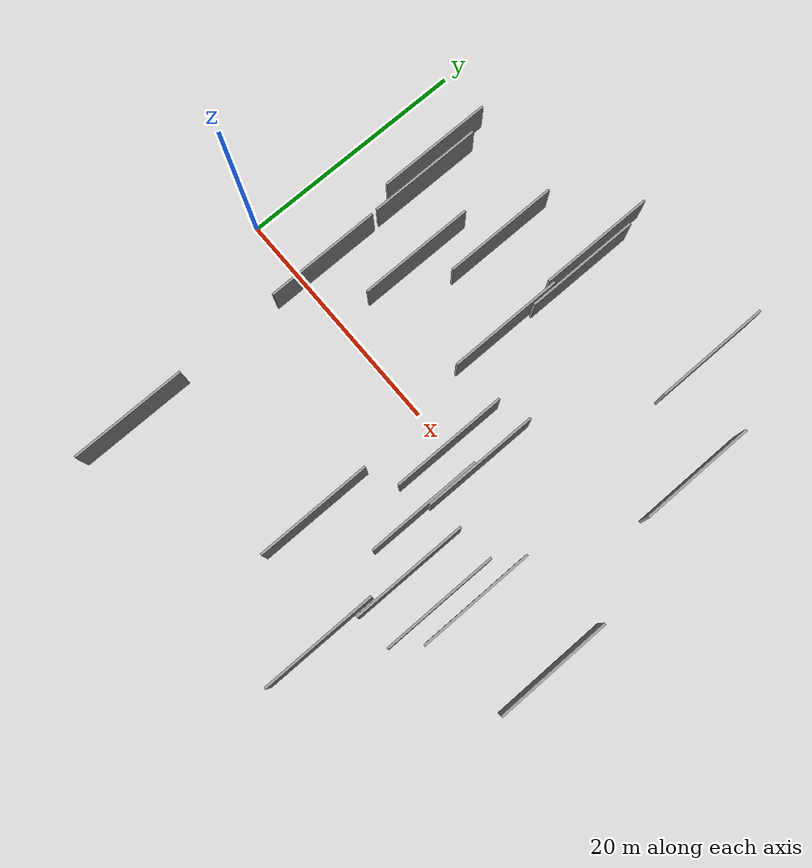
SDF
<sdf version="1.6">
 <world name="default">
  <scene>
   <sky><clouds><speed>12</speed></clouds></sky>
   <ambient>0.4 0.4 0.4 1</ambient>
   <background>0.7 0.7 0.7 1</background>
   <shadows>1</shadows>
  </scene>
  <gravity>0 0 -9.8066</gravity>
  <magnetic_field>6e-06 2.3e-05 -4.2e-05</magnetic_field>
  <physics default="0" name="default_physics" type="ode">
   <ode>
    <solver>
     <type>quick</type>
     <iters>10</iters>
     <sor>1.0</sor>
     <use_dynamic_moi_rescaling>0</use_dynamic_moi_rescaling>
    </solver>
    <constraints>
     <cfm>0</cfm>
     <erp>0.2</erp>
     <contact_max_correcting_vel>100</contact_max_correcting_vel>
     <contact_surface_layer>0.001</contact_surface_layer>
    </constraints>
   </ode>
   <max_step_size>0.004</max_step_size>
   <real_time_factor>1</real_time_factor>
   <real_time_update_rate>250</real_time_update_rate>
  </physics>
  <light name="sun" type="directional">
   <pose>0 0 10 0 0 0</pose>
   <diffuse>0.8 0.8 0.8 1</diffuse>
   <specular>0.2 0.2 0.2 1</specular>
   <attenuation>
    <range>1000</range>
    <constant>0.9</constant>
    <linear>0.01</linear>
    <quadratic>0.001</quadratic>
   </attenuation>
   <direction>-0.5 0.1 -0.9</direction>
  </light>
  <model name="grey_wall_1">
   <static>1</static>
   <pose>5.0170 14.5198 0.0 0.000000 0.000000 1.570796</pose>
   <link name="link">
    <pose>0 0 2.00 0 0 0</pose>
    <collision name="collision"><geometry><box><size>10.00 0.2 4.00</size></box></geometry></collision>
    <visual name="visual">
     <cast_shadows>0</cast_shadows>
     <geometry><box><size>10.00 0.2 4.00</size></box></geometry>
     <material>
      <script>
       <uri>model://grey_wall/materials/scripts</uri>
       <uri>model://grey_wall/materials/textures</uri>
       <name>vrc/grey_wall</name>
      </script>
     </material>
    </visual>
   </link>
  </model>
  <model name="grey_wall_2">
   <static>1</static>
   <pose>28.4759 -16.8140 0.0 0.000000 0.000000 1.570796</pose>
   <link name="link">
    <pose>0 0 2.00 0 0 0</pose>
    <collision name="collision"><geometry><box><size>10.00 0.2 4.00</size></box></geometry></collision>
    <visual name="visual">
     <cast_shadows>0</cast_shadows>
     <geometry><box><size>10.00 0.2 4.00</size></box></geometry>
     <material>
      <script>
       <uri>model://grey_wall/materials/scripts</uri>
       <uri>model://grey_wall/materials/textures</uri>
       <name>vrc/grey_wall</name>
      </script>
     </material>
    </visual>
   </link>
  </model>
  <model name="grey_wall_3">
   <static>1</static>
   <pose>13.6258 13.8792 0.0 0.000000 0.000000 1.570796</pose>
   <link name="link">
    <pose>0 0 2.00 0 0 0</pose>
    <collision name="collision"><geometry><box><size>10.00 0.2 4.00</size></box></geometry></collision>
    <visual name="visual">
     <cast_shadows>0</cast_shadows>
     <geometry><box><size>10.00 0.2 4.00</size></box></geometry>
     <material>
      <script>
       <uri>model://grey_wall/materials/scripts</uri>
       <uri>model://grey_wall/materials/textures</uri>
       <name>vrc/grey_wall</name>
      </script>
     </material>
    </visual>
   </link>
  </model>
  <model name="grey_wall_4">
   <static>1</static>
   <pose>6.1085 12.5830 0.0 0.000000 0.000000 1.570796</pose>
   <link name="link">
    <pose>0 0 2.00 0 0 0</pose>
    <collision name="collision"><geometry><box><size>10.00 0.2 4.00</size></box></geometry></collision>
    <visual name="visual">
     <cast_shadows>0</cast_shadows>
     <geometry><box><size>10.00 0.2 4.00</size></box></geometry>
     <material>
      <script>
       <uri>model://grey_wall/materials/scripts</uri>
       <uri>model://grey_wall/materials/textures</uri>
       <name>vrc/grey_wall</name>
      </script>
     </material>
    </visual>
   </link>
  </model>
  <model name="grey_wall_5">
   <static>1</static>
   <pose>41.0255 -5.1902 0.0 0.000000 0.000000 1.570796</pose>
   <link name="link">
    <pose>0 0 2.00 0 0 0</pose>
    <collision name="collision"><geometry><box><size>10.00 0.2 4.00</size></box></geometry></collision>
    <visual name="visual">
     <cast_shadows>0</cast_shadows>
     <geometry><box><size>10.00 0.2 4.00</size></box></geometry>
     <material>
      <script>
       <uri>model://grey_wall/materials/scripts</uri>
       <uri>model://grey_wall/materials/textures</uri>
       <name>vrc/grey_wall</name>
      </script>
     </material>
    </visual>
   </link>
  </model>
  <model name="grey_wall_6">
   <static>1</static>
   <pose>37.4148 12.4270 0.0 0.000000 0.000000 1.570796</pose>
   <link name="link">
    <pose>0 0 2.00 0 0 0</pose>
    <collision name="collision"><geometry><box><size>10.00 0.2 4.00</size></box></geometry></collision>
    <visual name="visual">
     <cast_shadows>0</cast_shadows>
     <geometry><box><size>10.00 0.2 4.00</size></box></geometry>
     <material>
      <script>
       <uri>model://grey_wall/materials/scripts</uri>
       <uri>model://grey_wall/materials/textures</uri>
       <name>vrc/grey_wall</name>
      </script>
     </material>
    </visual>
   </link>
  </model>
  <model name="grey_wall_7">
   <static>1</static>
   <pose>10.6777 7.7717 0.0 0.000000 0.000000 1.570796</pose>
   <link name="link">
    <pose>0 0 2.00 0 0 0</pose>
    <collision name="collision"><geometry><box><size>10.00 0.2 4.00</size></box></geometry></collision>
    <visual name="visual">
     <cast_shadows>0</cast_shadows>
     <geometry><box><size>10.00 0.2 4.00</size></box></geometry>
     <material>
      <script>
       <uri>model://grey_wall/materials/scripts</uri>
       <uri>model://grey_wall/materials/textures</uri>
       <name>vrc/grey_wall</name>
      </script>
     </material>
    </visual>
   </link>
  </model>
  <model name="grey_wall_8">
   <static>1</static>
   <pose>31.4220 19.6025 0.0 0.000000 0.000000 1.570796</pose>
   <link name="link">
    <pose>0 0 2.00 0 0 0</pose>
    <collision name="collision"><geometry><box><size>10.00 0.2 4.00</size></box></geometry></collision>
    <visual name="visual">
     <cast_shadows>0</cast_shadows>
     <geometry><box><size>10.00 0.2 4.00</size></box></geometry>
     <material>
      <script>
       <uri>model://grey_wall/materials/scripts</uri>
       <uri>model://grey_wall/materials/textures</uri>
       <name>vrc/grey_wall</name>
      </script>
     </material>
    </visual>
   </link>
  </model>
  <model name="grey_wall_9">
   <static>1</static>
   <pose>19.4911 9.2202 0.0 0.000000 0.000000 1.570796</pose>
   <link name="link">
    <pose>0 0 2.00 0 0 0</pose>
    <collision name="collision"><geometry><box><size>10.00 0.2 4.00</size></box></geometry></collision>
    <visual name="visual">
     <cast_shadows>0</cast_shadows>
     <geometry><box><size>10.00 0.2 4.00</size></box></geometry>
     <material>
      <script>
       <uri>model://grey_wall/materials/scripts</uri>
       <uri>model://grey_wall/materials/textures</uri>
       <name>vrc/grey_wall</name>
      </script>
     </material>
    </visual>
   </link>
  </model>
  <model name="grey_wall_10">
   <static>1</static>
   <pose>6.2766 -17.0150 0.0 0.000000 0.000000 1.570796</pose>
   <link name="link">
    <pose>0 0 2.00 0 0 0</pose>
    <collision name="collision"><geometry><box><size>10.00 0.2 4.00</size></box></geometry></collision>
    <visual name="visual">
     <cast_shadows>0</cast_shadows>
     <geometry><box><size>10.00 0.2 4.00</size></box></geometry>
     <material>
      <script>
       <uri>model://grey_wall/materials/scripts</uri>
       <uri>model://grey_wall/materials/textures</uri>
       <name>vrc/grey_wall</name>
      </script>
     </material>
    </visual>
   </link>
  </model>
  <model name="grey_wall_11">
   <static>1</static>
   <pose>26.0001 -4.6062 0.0 0.000000 0.000000 1.570796</pose>
   <link name="link">
    <pose>0 0 2.00 0 0 0</pose>
    <collision name="collision"><geometry><box><size>10.00 0.2 4.00</size></box></geometry></collision>
    <visual name="visual">
     <cast_shadows>0</cast_shadows>
     <geometry><box><size>10.00 0.2 4.00</size></box></geometry>
     <material>
      <script>
       <uri>model://grey_wall/materials/scripts</uri>
       <uri>model://grey_wall/materials/textures</uri>
       <name>vrc/grey_wall</name>
      </script>
     </material>
    </visual>
   </link>
  </model>
  <model name="grey_wall_12">
   <static>1</static>
   <pose>19.1347 18.9168 0.0 0.000000 0.000000 1.570796</pose>
   <link name="link">
    <pose>0 0 2.00 0 0 0</pose>
    <collision name="collision"><geometry><box><size>10.00 0.2 4.00</size></box></geometry></collision>
    <visual name="visual">
     <cast_shadows>0</cast_shadows>
     <geometry><box><size>10.00 0.2 4.00</size></box></geometry>
     <material>
      <script>
       <uri>model://grey_wall/materials/scripts</uri>
       <uri>model://grey_wall/materials/textures</uri>
       <name>vrc/grey_wall</name>
      </script>
     </material>
    </visual>
   </link>
  </model>
  <model name="grey_wall_13">
   <static>1</static>
   <pose>33.6622 -6.1644 0.0 0.000000 0.000000 1.570796</pose>
   <link name="link">
    <pose>0 0 2.00 0 0 0</pose>
    <collision name="collision"><geometry><box><size>10.00 0.2 4.00</size></box></geometry></collision>
    <visual name="visual">
     <cast_shadows>0</cast_shadows>
     <geometry><box><size>10.00 0.2 4.00</size></box></geometry>
     <material>
      <script>
       <uri>model://grey_wall/materials/scripts</uri>
       <uri>model://grey_wall/materials/textures</uri>
       <name>vrc/grey_wall</name>
      </script>
     </material>
    </visual>
   </link>
  </model>
  <model name="grey_wall_14">
   <static>1</static>
   <pose>6.1568 2.1117 0.0 0.000000 0.000000 1.570796</pose>
   <link name="link">
    <pose>0 0 2.00 0 0 0</pose>
    <collision name="collision"><geometry><box><size>10.00 0.2 4.00</size></box></geometry></collision>
    <visual name="visual">
     <cast_shadows>0</cast_shadows>
     <geometry><box><size>10.00 0.2 4.00</size></box></geometry>
     <material>
      <script>
       <uri>model://grey_wall/materials/scripts</uri>
       <uri>model://grey_wall/materials/textures</uri>
       <name>vrc/grey_wall</name>
      </script>
     </material>
    </visual>
   </link>
  </model>
  <model name="grey_wall_15">
   <static>1</static>
   <pose>20.9176 -11.0210 0.0 0.000000 0.000000 1.570796</pose>
   <link name="link">
    <pose>0 0 2.00 0 0 0</pose>
    <collision name="collision"><geometry><box><size>10.00 0.2 4.00</size></box></geometry></collision>
    <visual name="visual">
     <cast_shadows>0</cast_shadows>
     <geometry><box><size>10.00 0.2 4.00</size></box></geometry>
     <material>
      <script>
       <uri>model://grey_wall/materials/scripts</uri>
       <uri>model://grey_wall/materials/textures</uri>
       <name>vrc/grey_wall</name>
      </script>
     </material>
    </visual>
   </link>
  </model>
  <model name="grey_wall_16">
   <static>1</static>
   <pose>23.5638 -0.0278 0.0 0.000000 0.000000 1.570796</pose>
   <link name="link">
    <pose>0 0 2.00 0 0 0</pose>
    <collision name="collision"><geometry><box><size>10.00 0.2 4.00</size></box></geometry></collision>
    <visual name="visual">
     <cast_shadows>0</cast_shadows>
     <geometry><box><size>10.00 0.2 4.00</size></box></geometry>
     <material>
      <script>
       <uri>model://grey_wall/materials/scripts</uri>
       <uri>model://grey_wall/materials/textures</uri>
       <name>vrc/grey_wall</name>
      </script>
     </material>
    </visual>
   </link>
  </model>
  <model name="grey_wall_17">
   <static>1</static>
   <pose>28.9253 -8.5679 0.0 0.000000 0.000000 1.570796</pose>
   <link name="link">
    <pose>0 0 2.00 0 0 0</pose>
    <collision name="collision"><geometry><box><size>10.00 0.2 4.00</size></box></geometry></collision>
    <visual name="visual">
     <cast_shadows>0</cast_shadows>
     <geometry><box><size>10.00 0.2 4.00</size></box></geometry>
     <material>
      <script>
       <uri>model://grey_wall/materials/scripts</uri>
       <uri>model://grey_wall/materials/textures</uri>
       <name>vrc/grey_wall</name>
      </script>
     </material>
    </visual>
   </link>
  </model>
  <model name="grey_wall_18">
   <static>1</static>
   <pose>26.2015 0.7805 0.0 0.000000 0.000000 1.570796</pose>
   <link name="link">
    <pose>0 0 2.00 0 0 0</pose>
    <collision name="collision"><geometry><box><size>10.00 0.2 4.00</size></box></geometry></collision>
    <visual name="visual">
     <cast_shadows>0</cast_shadows>
     <geometry><box><size>10.00 0.2 4.00</size></box></geometry>
     <material>
      <script>
       <uri>model://grey_wall/materials/scripts</uri>
       <uri>model://grey_wall/materials/textures</uri>
       <name>vrc/grey_wall</name>
      </script>
     </material>
    </visual>
   </link>
  </model>
  <model name="grey_wall_19">
   <static>1</static>
   <pose>19.8059 16.8224 0.0 0.000000 0.000000 1.570796</pose>
   <link name="link">
    <pose>0 0 2.00 0 0 0</pose>
    <collision name="collision"><geometry><box><size>10.00 0.2 4.00</size></box></geometry></collision>
    <visual name="visual">
     <cast_shadows>0</cast_shadows>
     <geometry><box><size>10.00 0.2 4.00</size></box></geometry>
     <material>
      <script>
       <uri>model://grey_wall/materials/scripts</uri>
       <uri>model://grey_wall/materials/textures</uri>
       <name>vrc/grey_wall</name>
      </script>
     </material>
    </visual>
   </link>
  </model>
  <model name="grey_wall_20">
   <static>1</static>
   <pose>32.0848 -8.3414 0.0 0.000000 0.000000 1.570796</pose>
   <link name="link">
    <pose>0 0 2.00 0 0 0</pose>
    <collision name="collision"><geometry><box><size>10.00 0.2 4.00</size></box></geometry></collision>
    <visual name="visual">
     <cast_shadows>0</cast_shadows>
     <geometry><box><size>10.00 0.2 4.00</size></box></geometry>
     <material>
      <script>
       <uri>model://grey_wall/materials/scripts</uri>
       <uri>model://grey_wall/materials/textures</uri>
       <name>vrc/grey_wall</name>
      </script>
     </material>
    </visual>
   </link>
  </model>
 </world>
</sdf>
